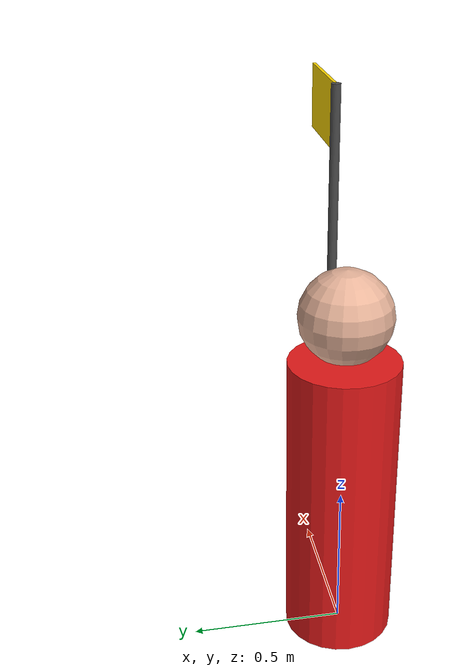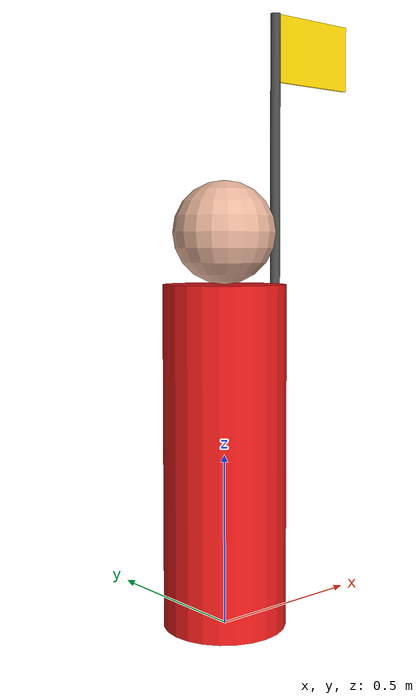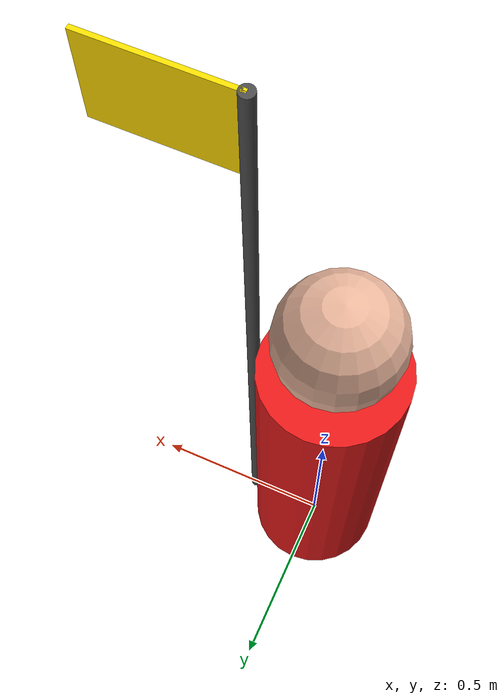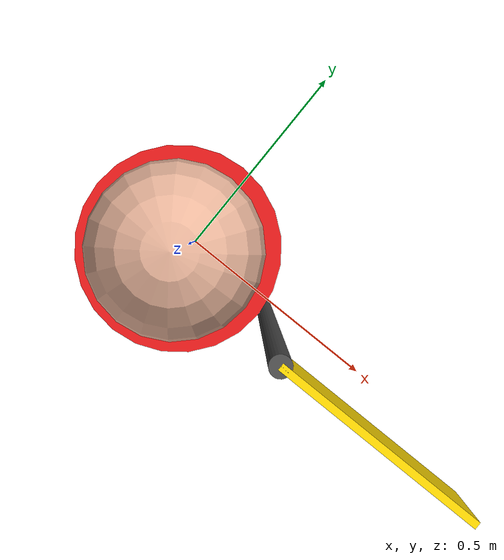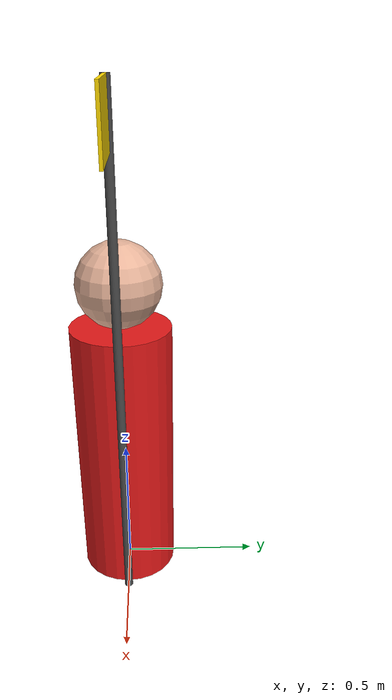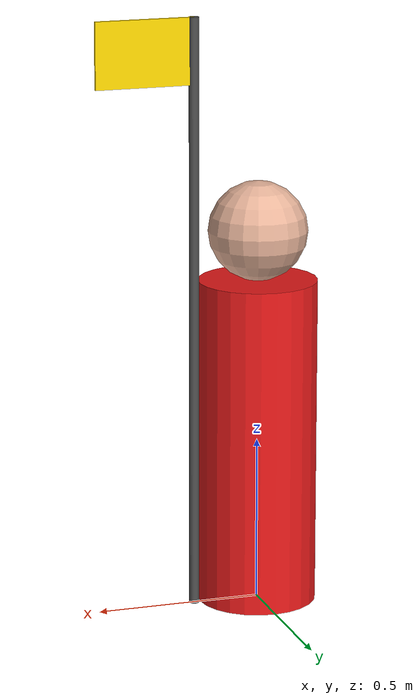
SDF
<?xml version="1.0"?>
<sdf version="1.6">
  <model name="victim">
    <static>true</static>
    <link name="link">
      <pose>0 0 0 0 0 0</pose>

      <!-- body -->
      <visual name="body_visual">
        <pose>0 0 0.5 0 0 0</pose>
        <geometry>
          <cylinder>
            <radius>0.18</radius>
            <length>1.0</length>
          </cylinder>
        </geometry>
        <material>
          <ambient>0.9 0.1 0.1 1</ambient>
          <diffuse>0.9 0.1 0.1 1</diffuse>
        </material>
      </visual>
      <collision name="body_collision">
        <pose>0 0 0.5 0 0 0</pose>
        <geometry>
          <cylinder>
            <radius>0.18</radius>
            <length>1.0</length>
          </cylinder>
        </geometry>
      </collision>

      <!-- head -->
      <visual name="head_visual">
        <pose>0 0 1.15 0 0 0</pose>
        <geometry>
          <sphere>
            <radius>0.15</radius>
          </sphere>
        </geometry>
        <material>
          <ambient>0.9 0.7 0.6 1</ambient>
          <diffuse>0.9 0.7 0.6 1</diffuse>
        </material>
      </visual>
      <collision name="head_collision">
        <pose>0 0 1.15 0 0 0</pose>
        <geometry>
          <sphere>
            <radius>0.15</radius>
          </sphere>
        </geometry>
      </collision>

      <!-- bright marker flag so it's visible from the air -->
      <visual name="flag_pole">
        <pose>0.2 0 0.9 0 0 0</pose>
        <geometry>
          <cylinder>
            <radius>0.015</radius>
            <length>1.8</length>
          </cylinder>
        </geometry>
        <material>
          <ambient>0.3 0.3 0.3 1</ambient>
          <diffuse>0.3 0.3 0.3 1</diffuse>
        </material>
      </visual>
      <visual name="flag">
        <pose>0.35 0 1.7 0 0 0</pose>
        <geometry>
          <box>
            <size>0.3 0.01 0.2</size>
          </box>
        </geometry>
        <material>
          <ambient>1 0.85 0 1</ambient>
          <diffuse>1 0.85 0 1</diffuse>
          <emissive>0.5 0.4 0 1</emissive>
        </material>
      </visual>
    </link>
  </model>
</sdf>
